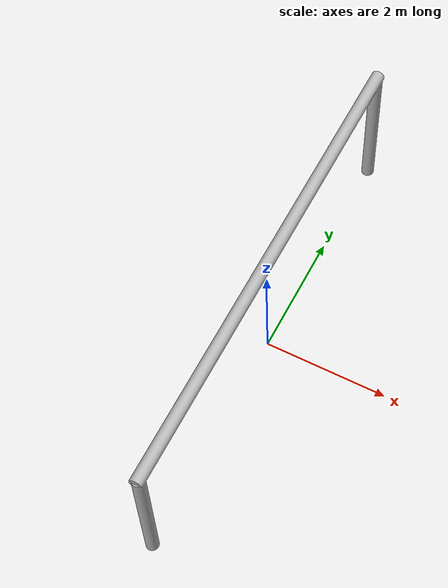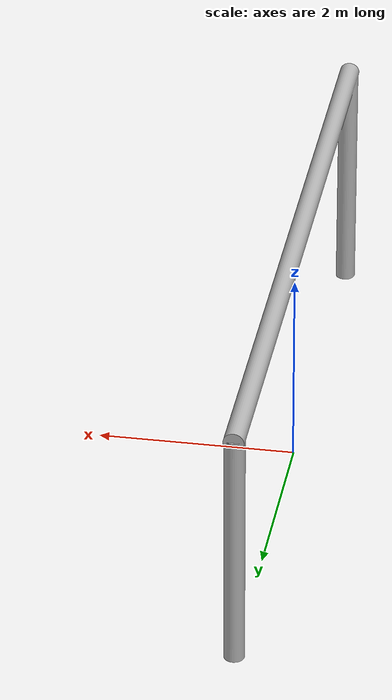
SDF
<?xml version='1.0'?>
<sdf version='1.4'>
  <model name="Poteaux_foot">
	  <static>true</static>

	  <link name='poteau_droit'>
      <pose>0 -3.66 0 0 0 0</pose>

      <collision name='collision'>
        <geometry>
           <box>
            <size>0.2 0.2 8</size>
          </box>
        </geometry>
      </collision>

      <visual name='visual'>
          <pose>0 3.66 0 0 0 0</pose>

        	<geometry>
          	<mesh>
          		<uri>model://poteaux_foot/meshes/poteaux_foot.dae</uri>
          		<scale>1 1 1</scale>
        	</mesh>

        	</geometry>
      </visual>
	  </link>

    <link name='poteau_gauche'>
      <pose>0 3.66 0 0 0 0</pose>

      <collision name='collision'>
        <geometry>
           <box>
            <size>0.2 0.2 8</size>
          </box>
        </geometry>
      </collision>

    </link>
  </model>
</sdf>
